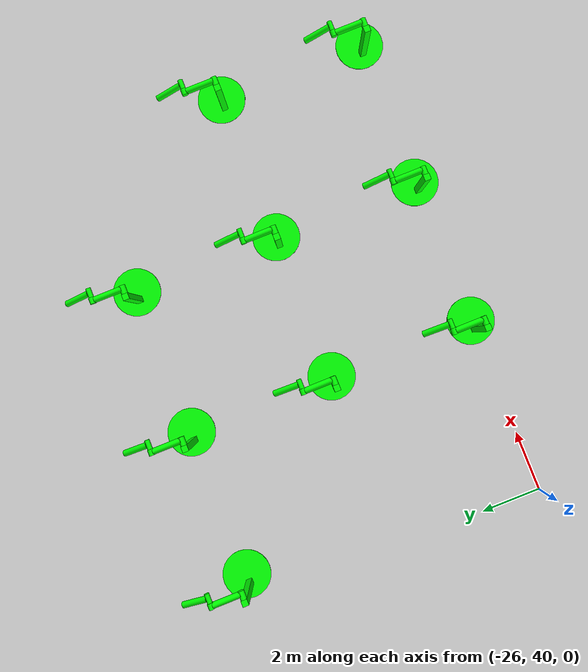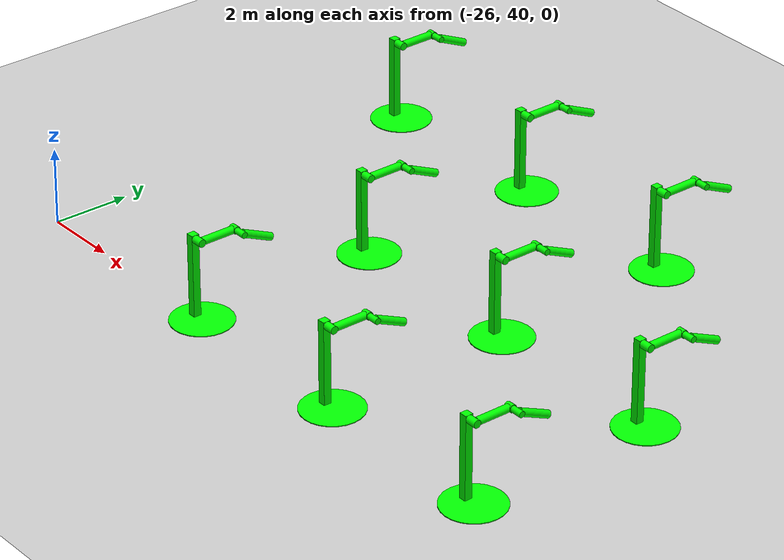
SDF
<sdf version="1.6">
 <world name="double_pendulums">
  <model name="ground_plane">
   <static>true</static>
   <link name="link">
    <collision name="collision">
     <geometry><plane><normal>0 0 1</normal><size>100 100</size></plane></geometry>
    </collision>
    <visual name="visual">
     <geometry><plane><normal>0 0 1</normal><size>100 100</size></plane></geometry>
     <material>
      <ambient>0.8 0.8 0.8 1</ambient>
      <diffuse>0.8 0.8 0.8 1</diffuse>
      <specular>0.8 0.8 0.8 1</specular>
     </material>
    </visual>
   </link>
  </model>
  <model name="dbl_pendulum_206">
   <pose>-20 40 0 0 0 0</pose>
   <link name="base">
    <inertial><mass>100</mass></inertial>
    <visual name="vis_plate_on_ground">
     <pose>0 0 0.01 0 0 0</pose>
     <geometry><cylinder><radius>0.8</radius><length>0.02</length></cylinder></geometry>
     <material><ambient>0 1 0 1</ambient><diffuse>0 1 0 1</diffuse><specular>0 1 0 1</specular></material>
    </visual>
    <visual name="vis_pole">
     <pose>-0.275 0 1.1 0 0 0</pose>
     <geometry><box><size>0.2 0.2 2.2</size></box></geometry>
     <material><ambient>0 1 0 1</ambient><diffuse>0 1 0 1</diffuse><specular>0 1 0 1</specular></material>
    </visual>
    <collision name="col_plate_on_ground">
     <pose>0 0 0.01 0 0 0</pose>
     <geometry><cylinder><radius>0.8</radius><length>0.02</length></cylinder></geometry>
    </collision>
    <collision name="col_pole">
     <pose>-0.275 0 1.1 0 0 0</pose>
     <geometry><box><size>0.2 0.2 2.2</size></box></geometry>
    </collision>
   </link>
   <link name="upper_link">
    <pose>0 0 2.1 -1.5708 0 0</pose>
    <inertial><pose>0 0 0.5 0 0 0</pose></inertial>
    <visual name="vis_upper_joint">
     <pose>-0.05 0 0 0 1.5708 0</pose>
     <geometry><cylinder><radius>0.1</radius><length>0.3</length></cylinder></geometry>
     <material><ambient>0 1 0 1</ambient><diffuse>0 1 0 1</diffuse><specular>0 1 0 1</specular></material>
    </visual>
    <visual name="vis_lower_joint">
     <pose>0 0 1.0 0 1.5708 0</pose>
     <geometry><cylinder><radius>0.1</radius><length>0.2</length></cylinder></geometry>
     <material><ambient>0 1 0 1</ambient><diffuse>0 1 0 1</diffuse><specular>0 1 0 1</specular></material>
    </visual>
    <visual name="vis_cylinder">
     <pose>0 0 0.5 0 0 0</pose>
     <geometry><cylinder><radius>0.1</radius><length>0.9</length></cylinder></geometry>
     <material><ambient>0 1 0 1</ambient><diffuse>0 1 0 1</diffuse><specular>0 1 0 1</specular></material>
    </visual>
    <collision name="col_upper_joint">
     <pose>-0.05 0 0 0 1.5708 0</pose>
     <geometry><cylinder><radius>0.1</radius><length>0.3</length></cylinder></geometry>
    </collision>
    <collision name="col_lower_joint">
     <pose>0 0 1.0 0 1.5708 0</pose>
     <geometry><cylinder><radius>0.1</radius><length>0.2</length></cylinder></geometry>
    </collision>
    <collision name="col_cylinder">
     <pose>0 0 0.5 0 0 0</pose>
     <geometry><cylinder><radius>0.1</radius><length>0.9</length></cylinder></geometry>
    </collision>
   </link>
   <link name="lower_link">
    <pose>0.25 1.0 2.1 -2 0 0</pose>
    <inertial><pose>0 0 0.5 0 0 0</pose></inertial>
    <visual name="vis_lower_joint">
     <pose>0 0 0 0 1.5708 0</pose>
     <geometry><cylinder><radius>0.08</radius><length>0.3</length></cylinder></geometry>
     <material><ambient>0 1 0 1</ambient><diffuse>0 1 0 1</diffuse><specular>0 1 0 1</specular></material>
    </visual>
    <visual name="vis_cylinder">
     <pose>0 0 0.5 0 0 0</pose>
     <geometry><cylinder><radius>0.1</radius><length>0.9</length></cylinder></geometry>
     <material><ambient>0 1 0 1</ambient><diffuse>0 1 0 1</diffuse><specular>0 1 0 1</specular></material>
    </visual>
    <collision name="col_lower_joint">
     <pose>0 0 0 0 1.5708 0</pose>
     <geometry><cylinder><radius>0.08</radius><length>0.3</length></cylinder></geometry>
    </collision>
    <collision name="col_cylinder">
     <pose>0 0 0.5 0 0 0</pose>
     <geometry><cylinder><radius>0.1</radius><length>0.9</length></cylinder></geometry>
    </collision>
   </link>
   <joint name="upper_joint" type="revolute">
    <parent>base</parent>
    <child>upper_link</child>
    <axis><xyz>1.0 0 0</xyz></axis>
   </joint>
   <joint name="lower_joint" type="revolute">
    <parent>upper_link</parent>
    <child>lower_link</child>
    <axis><xyz>1.0 0 0</xyz></axis>
   </joint>
  </model>
  <model name="dbl_pendulum_207">
   <pose>-15 40 0 0 0 0</pose>
   <link name="base">
    <inertial><mass>100</mass></inertial>
    <visual name="vis_plate_on_ground">
     <pose>0 0 0.01 0 0 0</pose>
     <geometry><cylinder><radius>0.8</radius><length>0.02</length></cylinder></geometry>
     <material><ambient>0 1 0 1</ambient><diffuse>0 1 0 1</diffuse><specular>0 1 0 1</specular></material>
    </visual>
    <visual name="vis_pole">
     <pose>-0.275 0 1.1 0 0 0</pose>
     <geometry><box><size>0.2 0.2 2.2</size></box></geometry>
     <material><ambient>0 1 0 1</ambient><diffuse>0 1 0 1</diffuse><specular>0 1 0 1</specular></material>
    </visual>
    <collision name="col_plate_on_ground">
     <pose>0 0 0.01 0 0 0</pose>
     <geometry><cylinder><radius>0.8</radius><length>0.02</length></cylinder></geometry>
    </collision>
    <collision name="col_pole">
     <pose>-0.275 0 1.1 0 0 0</pose>
     <geometry><box><size>0.2 0.2 2.2</size></box></geometry>
    </collision>
   </link>
   <link name="upper_link">
    <pose>0 0 2.1 -1.5708 0 0</pose>
    <inertial><pose>0 0 0.5 0 0 0</pose></inertial>
    <visual name="vis_upper_joint">
     <pose>-0.05 0 0 0 1.5708 0</pose>
     <geometry><cylinder><radius>0.1</radius><length>0.3</length></cylinder></geometry>
     <material><ambient>0 1 0 1</ambient><diffuse>0 1 0 1</diffuse><specular>0 1 0 1</specular></material>
    </visual>
    <visual name="vis_lower_joint">
     <pose>0 0 1.0 0 1.5708 0</pose>
     <geometry><cylinder><radius>0.1</radius><length>0.2</length></cylinder></geometry>
     <material><ambient>0 1 0 1</ambient><diffuse>0 1 0 1</diffuse><specular>0 1 0 1</specular></material>
    </visual>
    <visual name="vis_cylinder">
     <pose>0 0 0.5 0 0 0</pose>
     <geometry><cylinder><radius>0.1</radius><length>0.9</length></cylinder></geometry>
     <material><ambient>0 1 0 1</ambient><diffuse>0 1 0 1</diffuse><specular>0 1 0 1</specular></material>
    </visual>
    <collision name="col_upper_joint">
     <pose>-0.05 0 0 0 1.5708 0</pose>
     <geometry><cylinder><radius>0.1</radius><length>0.3</length></cylinder></geometry>
    </collision>
    <collision name="col_lower_joint">
     <pose>0 0 1.0 0 1.5708 0</pose>
     <geometry><cylinder><radius>0.1</radius><length>0.2</length></cylinder></geometry>
    </collision>
    <collision name="col_cylinder">
     <pose>0 0 0.5 0 0 0</pose>
     <geometry><cylinder><radius>0.1</radius><length>0.9</length></cylinder></geometry>
    </collision>
   </link>
   <link name="lower_link">
    <pose>0.25 1.0 2.1 -2 0 0</pose>
    <inertial><pose>0 0 0.5 0 0 0</pose></inertial>
    <visual name="vis_lower_joint">
     <pose>0 0 0 0 1.5708 0</pose>
     <geometry><cylinder><radius>0.08</radius><length>0.3</length></cylinder></geometry>
     <material><ambient>0 1 0 1</ambient><diffuse>0 1 0 1</diffuse><specular>0 1 0 1</specular></material>
    </visual>
    <visual name="vis_cylinder">
     <pose>0 0 0.5 0 0 0</pose>
     <geometry><cylinder><radius>0.1</radius><length>0.9</length></cylinder></geometry>
     <material><ambient>0 1 0 1</ambient><diffuse>0 1 0 1</diffuse><specular>0 1 0 1</specular></material>
    </visual>
    <collision name="col_lower_joint">
     <pose>0 0 0 0 1.5708 0</pose>
     <geometry><cylinder><radius>0.08</radius><length>0.3</length></cylinder></geometry>
    </collision>
    <collision name="col_cylinder">
     <pose>0 0 0.5 0 0 0</pose>
     <geometry><cylinder><radius>0.1</radius><length>0.9</length></cylinder></geometry>
    </collision>
   </link>
   <joint name="upper_joint" type="revolute">
    <parent>base</parent>
    <child>upper_link</child>
    <axis><xyz>1.0 0 0</xyz></axis>
   </joint>
   <joint name="lower_joint" type="revolute">
    <parent>upper_link</parent>
    <child>lower_link</child>
    <axis><xyz>1.0 0 0</xyz></axis>
   </joint>
  </model>
  <model name="dbl_pendulum_208">
   <pose>-10 40 0 0 0 0</pose>
   <link name="base">
    <inertial><mass>100</mass></inertial>
    <visual name="vis_plate_on_ground">
     <pose>0 0 0.01 0 0 0</pose>
     <geometry><cylinder><radius>0.8</radius><length>0.02</length></cylinder></geometry>
     <material><ambient>0 1 0 1</ambient><diffuse>0 1 0 1</diffuse><specular>0 1 0 1</specular></material>
    </visual>
    <visual name="vis_pole">
     <pose>-0.275 0 1.1 0 0 0</pose>
     <geometry><box><size>0.2 0.2 2.2</size></box></geometry>
     <material><ambient>0 1 0 1</ambient><diffuse>0 1 0 1</diffuse><specular>0 1 0 1</specular></material>
    </visual>
    <collision name="col_plate_on_ground">
     <pose>0 0 0.01 0 0 0</pose>
     <geometry><cylinder><radius>0.8</radius><length>0.02</length></cylinder></geometry>
    </collision>
    <collision name="col_pole">
     <pose>-0.275 0 1.1 0 0 0</pose>
     <geometry><box><size>0.2 0.2 2.2</size></box></geometry>
    </collision>
   </link>
   <link name="upper_link">
    <pose>0 0 2.1 -1.5708 0 0</pose>
    <inertial><pose>0 0 0.5 0 0 0</pose></inertial>
    <visual name="vis_upper_joint">
     <pose>-0.05 0 0 0 1.5708 0</pose>
     <geometry><cylinder><radius>0.1</radius><length>0.3</length></cylinder></geometry>
     <material><ambient>0 1 0 1</ambient><diffuse>0 1 0 1</diffuse><specular>0 1 0 1</specular></material>
    </visual>
    <visual name="vis_lower_joint">
     <pose>0 0 1.0 0 1.5708 0</pose>
     <geometry><cylinder><radius>0.1</radius><length>0.2</length></cylinder></geometry>
     <material><ambient>0 1 0 1</ambient><diffuse>0 1 0 1</diffuse><specular>0 1 0 1</specular></material>
    </visual>
    <visual name="vis_cylinder">
     <pose>0 0 0.5 0 0 0</pose>
     <geometry><cylinder><radius>0.1</radius><length>0.9</length></cylinder></geometry>
     <material><ambient>0 1 0 1</ambient><diffuse>0 1 0 1</diffuse><specular>0 1 0 1</specular></material>
    </visual>
    <collision name="col_upper_joint">
     <pose>-0.05 0 0 0 1.5708 0</pose>
     <geometry><cylinder><radius>0.1</radius><length>0.3</length></cylinder></geometry>
    </collision>
    <collision name="col_lower_joint">
     <pose>0 0 1.0 0 1.5708 0</pose>
     <geometry><cylinder><radius>0.1</radius><length>0.2</length></cylinder></geometry>
    </collision>
    <collision name="col_cylinder">
     <pose>0 0 0.5 0 0 0</pose>
     <geometry><cylinder><radius>0.1</radius><length>0.9</length></cylinder></geometry>
    </collision>
   </link>
   <link name="lower_link">
    <pose>0.25 1.0 2.1 -2 0 0</pose>
    <inertial><pose>0 0 0.5 0 0 0</pose></inertial>
    <visual name="vis_lower_joint">
     <pose>0 0 0 0 1.5708 0</pose>
     <geometry><cylinder><radius>0.08</radius><length>0.3</length></cylinder></geometry>
     <material><ambient>0 1 0 1</ambient><diffuse>0 1 0 1</diffuse><specular>0 1 0 1</specular></material>
    </visual>
    <visual name="vis_cylinder">
     <pose>0 0 0.5 0 0 0</pose>
     <geometry><cylinder><radius>0.1</radius><length>0.9</length></cylinder></geometry>
     <material><ambient>0 1 0 1</ambient><diffuse>0 1 0 1</diffuse><specular>0 1 0 1</specular></material>
    </visual>
    <collision name="col_lower_joint">
     <pose>0 0 0 0 1.5708 0</pose>
     <geometry><cylinder><radius>0.08</radius><length>0.3</length></cylinder></geometry>
    </collision>
    <collision name="col_cylinder">
     <pose>0 0 0.5 0 0 0</pose>
     <geometry><cylinder><radius>0.1</radius><length>0.9</length></cylinder></geometry>
    </collision>
   </link>
   <joint name="upper_joint" type="revolute">
    <parent>base</parent>
    <child>upper_link</child>
    <axis><xyz>1.0 0 0</xyz></axis>
   </joint>
   <joint name="lower_joint" type="revolute">
    <parent>upper_link</parent>
    <child>lower_link</child>
    <axis><xyz>1.0 0 0</xyz></axis>
   </joint>
  </model>
  <model name="dbl_pendulum_231">
   <pose>-20 45 0 0 0 0</pose>
   <link name="base">
    <inertial><mass>100</mass></inertial>
    <visual name="vis_plate_on_ground">
     <pose>0 0 0.01 0 0 0</pose>
     <geometry><cylinder><radius>0.8</radius><length>0.02</length></cylinder></geometry>
     <material><ambient>0 1 0 1</ambient><diffuse>0 1 0 1</diffuse><specular>0 1 0 1</specular></material>
    </visual>
    <visual name="vis_pole">
     <pose>-0.275 0 1.1 0 0 0</pose>
     <geometry><box><size>0.2 0.2 2.2</size></box></geometry>
     <material><ambient>0 1 0 1</ambient><diffuse>0 1 0 1</diffuse><specular>0 1 0 1</specular></material>
    </visual>
    <collision name="col_plate_on_ground">
     <pose>0 0 0.01 0 0 0</pose>
     <geometry><cylinder><radius>0.8</radius><length>0.02</length></cylinder></geometry>
    </collision>
    <collision name="col_pole">
     <pose>-0.275 0 1.1 0 0 0</pose>
     <geometry><box><size>0.2 0.2 2.2</size></box></geometry>
    </collision>
   </link>
   <link name="upper_link">
    <pose>0 0 2.1 -1.5708 0 0</pose>
    <inertial><pose>0 0 0.5 0 0 0</pose></inertial>
    <visual name="vis_upper_joint">
     <pose>-0.05 0 0 0 1.5708 0</pose>
     <geometry><cylinder><radius>0.1</radius><length>0.3</length></cylinder></geometry>
     <material><ambient>0 1 0 1</ambient><diffuse>0 1 0 1</diffuse><specular>0 1 0 1</specular></material>
    </visual>
    <visual name="vis_lower_joint">
     <pose>0 0 1.0 0 1.5708 0</pose>
     <geometry><cylinder><radius>0.1</radius><length>0.2</length></cylinder></geometry>
     <material><ambient>0 1 0 1</ambient><diffuse>0 1 0 1</diffuse><specular>0 1 0 1</specular></material>
    </visual>
    <visual name="vis_cylinder">
     <pose>0 0 0.5 0 0 0</pose>
     <geometry><cylinder><radius>0.1</radius><length>0.9</length></cylinder></geometry>
     <material><ambient>0 1 0 1</ambient><diffuse>0 1 0 1</diffuse><specular>0 1 0 1</specular></material>
    </visual>
    <collision name="col_upper_joint">
     <pose>-0.05 0 0 0 1.5708 0</pose>
     <geometry><cylinder><radius>0.1</radius><length>0.3</length></cylinder></geometry>
    </collision>
    <collision name="col_lower_joint">
     <pose>0 0 1.0 0 1.5708 0</pose>
     <geometry><cylinder><radius>0.1</radius><length>0.2</length></cylinder></geometry>
    </collision>
    <collision name="col_cylinder">
     <pose>0 0 0.5 0 0 0</pose>
     <geometry><cylinder><radius>0.1</radius><length>0.9</length></cylinder></geometry>
    </collision>
   </link>
   <link name="lower_link">
    <pose>0.25 1.0 2.1 -2 0 0</pose>
    <inertial><pose>0 0 0.5 0 0 0</pose></inertial>
    <visual name="vis_lower_joint">
     <pose>0 0 0 0 1.5708 0</pose>
     <geometry><cylinder><radius>0.08</radius><length>0.3</length></cylinder></geometry>
     <material><ambient>0 1 0 1</ambient><diffuse>0 1 0 1</diffuse><specular>0 1 0 1</specular></material>
    </visual>
    <visual name="vis_cylinder">
     <pose>0 0 0.5 0 0 0</pose>
     <geometry><cylinder><radius>0.1</radius><length>0.9</length></cylinder></geometry>
     <material><ambient>0 1 0 1</ambient><diffuse>0 1 0 1</diffuse><specular>0 1 0 1</specular></material>
    </visual>
    <collision name="col_lower_joint">
     <pose>0 0 0 0 1.5708 0</pose>
     <geometry><cylinder><radius>0.08</radius><length>0.3</length></cylinder></geometry>
    </collision>
    <collision name="col_cylinder">
     <pose>0 0 0.5 0 0 0</pose>
     <geometry><cylinder><radius>0.1</radius><length>0.9</length></cylinder></geometry>
    </collision>
   </link>
   <joint name="upper_joint" type="revolute">
    <parent>base</parent>
    <child>upper_link</child>
    <axis><xyz>1.0 0 0</xyz></axis>
   </joint>
   <joint name="lower_joint" type="revolute">
    <parent>upper_link</parent>
    <child>lower_link</child>
    <axis><xyz>1.0 0 0</xyz></axis>
   </joint>
  </model>
  <model name="dbl_pendulum_232">
   <pose>-15 45 0 0 0 0</pose>
   <link name="base">
    <inertial><mass>100</mass></inertial>
    <visual name="vis_plate_on_ground">
     <pose>0 0 0.01 0 0 0</pose>
     <geometry><cylinder><radius>0.8</radius><length>0.02</length></cylinder></geometry>
     <material><ambient>0 1 0 1</ambient><diffuse>0 1 0 1</diffuse><specular>0 1 0 1</specular></material>
    </visual>
    <visual name="vis_pole">
     <pose>-0.275 0 1.1 0 0 0</pose>
     <geometry><box><size>0.2 0.2 2.2</size></box></geometry>
     <material><ambient>0 1 0 1</ambient><diffuse>0 1 0 1</diffuse><specular>0 1 0 1</specular></material>
    </visual>
    <collision name="col_plate_on_ground">
     <pose>0 0 0.01 0 0 0</pose>
     <geometry><cylinder><radius>0.8</radius><length>0.02</length></cylinder></geometry>
    </collision>
    <collision name="col_pole">
     <pose>-0.275 0 1.1 0 0 0</pose>
     <geometry><box><size>0.2 0.2 2.2</size></box></geometry>
    </collision>
   </link>
   <link name="upper_link">
    <pose>0 0 2.1 -1.5708 0 0</pose>
    <inertial><pose>0 0 0.5 0 0 0</pose></inertial>
    <visual name="vis_upper_joint">
     <pose>-0.05 0 0 0 1.5708 0</pose>
     <geometry><cylinder><radius>0.1</radius><length>0.3</length></cylinder></geometry>
     <material><ambient>0 1 0 1</ambient><diffuse>0 1 0 1</diffuse><specular>0 1 0 1</specular></material>
    </visual>
    <visual name="vis_lower_joint">
     <pose>0 0 1.0 0 1.5708 0</pose>
     <geometry><cylinder><radius>0.1</radius><length>0.2</length></cylinder></geometry>
     <material><ambient>0 1 0 1</ambient><diffuse>0 1 0 1</diffuse><specular>0 1 0 1</specular></material>
    </visual>
    <visual name="vis_cylinder">
     <pose>0 0 0.5 0 0 0</pose>
     <geometry><cylinder><radius>0.1</radius><length>0.9</length></cylinder></geometry>
     <material><ambient>0 1 0 1</ambient><diffuse>0 1 0 1</diffuse><specular>0 1 0 1</specular></material>
    </visual>
    <collision name="col_upper_joint">
     <pose>-0.05 0 0 0 1.5708 0</pose>
     <geometry><cylinder><radius>0.1</radius><length>0.3</length></cylinder></geometry>
    </collision>
    <collision name="col_lower_joint">
     <pose>0 0 1.0 0 1.5708 0</pose>
     <geometry><cylinder><radius>0.1</radius><length>0.2</length></cylinder></geometry>
    </collision>
    <collision name="col_cylinder">
     <pose>0 0 0.5 0 0 0</pose>
     <geometry><cylinder><radius>0.1</radius><length>0.9</length></cylinder></geometry>
    </collision>
   </link>
   <link name="lower_link">
    <pose>0.25 1.0 2.1 -2 0 0</pose>
    <inertial><pose>0 0 0.5 0 0 0</pose></inertial>
    <visual name="vis_lower_joint">
     <pose>0 0 0 0 1.5708 0</pose>
     <geometry><cylinder><radius>0.08</radius><length>0.3</length></cylinder></geometry>
     <material><ambient>0 1 0 1</ambient><diffuse>0 1 0 1</diffuse><specular>0 1 0 1</specular></material>
    </visual>
    <visual name="vis_cylinder">
     <pose>0 0 0.5 0 0 0</pose>
     <geometry><cylinder><radius>0.1</radius><length>0.9</length></cylinder></geometry>
     <material><ambient>0 1 0 1</ambient><diffuse>0 1 0 1</diffuse><specular>0 1 0 1</specular></material>
    </visual>
    <collision name="col_lower_joint">
     <pose>0 0 0 0 1.5708 0</pose>
     <geometry><cylinder><radius>0.08</radius><length>0.3</length></cylinder></geometry>
    </collision>
    <collision name="col_cylinder">
     <pose>0 0 0.5 0 0 0</pose>
     <geometry><cylinder><radius>0.1</radius><length>0.9</length></cylinder></geometry>
    </collision>
   </link>
   <joint name="upper_joint" type="revolute">
    <parent>base</parent>
    <child>upper_link</child>
    <axis><xyz>1.0 0 0</xyz></axis>
   </joint>
   <joint name="lower_joint" type="revolute">
    <parent>upper_link</parent>
    <child>lower_link</child>
    <axis><xyz>1.0 0 0</xyz></axis>
   </joint>
  </model>
  <model name="dbl_pendulum_233">
   <pose>-10 45 0 0 0 0</pose>
   <link name="base">
    <inertial><mass>100</mass></inertial>
    <visual name="vis_plate_on_ground">
     <pose>0 0 0.01 0 0 0</pose>
     <geometry><cylinder><radius>0.8</radius><length>0.02</length></cylinder></geometry>
     <material><ambient>0 1 0 1</ambient><diffuse>0 1 0 1</diffuse><specular>0 1 0 1</specular></material>
    </visual>
    <visual name="vis_pole">
     <pose>-0.275 0 1.1 0 0 0</pose>
     <geometry><box><size>0.2 0.2 2.2</size></box></geometry>
     <material><ambient>0 1 0 1</ambient><diffuse>0 1 0 1</diffuse><specular>0 1 0 1</specular></material>
    </visual>
    <collision name="col_plate_on_ground">
     <pose>0 0 0.01 0 0 0</pose>
     <geometry><cylinder><radius>0.8</radius><length>0.02</length></cylinder></geometry>
    </collision>
    <collision name="col_pole">
     <pose>-0.275 0 1.1 0 0 0</pose>
     <geometry><box><size>0.2 0.2 2.2</size></box></geometry>
    </collision>
   </link>
   <link name="upper_link">
    <pose>0 0 2.1 -1.5708 0 0</pose>
    <inertial><pose>0 0 0.5 0 0 0</pose></inertial>
    <visual name="vis_upper_joint">
     <pose>-0.05 0 0 0 1.5708 0</pose>
     <geometry><cylinder><radius>0.1</radius><length>0.3</length></cylinder></geometry>
     <material><ambient>0 1 0 1</ambient><diffuse>0 1 0 1</diffuse><specular>0 1 0 1</specular></material>
    </visual>
    <visual name="vis_lower_joint">
     <pose>0 0 1.0 0 1.5708 0</pose>
     <geometry><cylinder><radius>0.1</radius><length>0.2</length></cylinder></geometry>
     <material><ambient>0 1 0 1</ambient><diffuse>0 1 0 1</diffuse><specular>0 1 0 1</specular></material>
    </visual>
    <visual name="vis_cylinder">
     <pose>0 0 0.5 0 0 0</pose>
     <geometry><cylinder><radius>0.1</radius><length>0.9</length></cylinder></geometry>
     <material><ambient>0 1 0 1</ambient><diffuse>0 1 0 1</diffuse><specular>0 1 0 1</specular></material>
    </visual>
    <collision name="col_upper_joint">
     <pose>-0.05 0 0 0 1.5708 0</pose>
     <geometry><cylinder><radius>0.1</radius><length>0.3</length></cylinder></geometry>
    </collision>
    <collision name="col_lower_joint">
     <pose>0 0 1.0 0 1.5708 0</pose>
     <geometry><cylinder><radius>0.1</radius><length>0.2</length></cylinder></geometry>
    </collision>
    <collision name="col_cylinder">
     <pose>0 0 0.5 0 0 0</pose>
     <geometry><cylinder><radius>0.1</radius><length>0.9</length></cylinder></geometry>
    </collision>
   </link>
   <link name="lower_link">
    <pose>0.25 1.0 2.1 -2 0 0</pose>
    <inertial><pose>0 0 0.5 0 0 0</pose></inertial>
    <visual name="vis_lower_joint">
     <pose>0 0 0 0 1.5708 0</pose>
     <geometry><cylinder><radius>0.08</radius><length>0.3</length></cylinder></geometry>
     <material><ambient>0 1 0 1</ambient><diffuse>0 1 0 1</diffuse><specular>0 1 0 1</specular></material>
    </visual>
    <visual name="vis_cylinder">
     <pose>0 0 0.5 0 0 0</pose>
     <geometry><cylinder><radius>0.1</radius><length>0.9</length></cylinder></geometry>
     <material><ambient>0 1 0 1</ambient><diffuse>0 1 0 1</diffuse><specular>0 1 0 1</specular></material>
    </visual>
    <collision name="col_lower_joint">
     <pose>0 0 0 0 1.5708 0</pose>
     <geometry><cylinder><radius>0.08</radius><length>0.3</length></cylinder></geometry>
    </collision>
    <collision name="col_cylinder">
     <pose>0 0 0.5 0 0 0</pose>
     <geometry><cylinder><radius>0.1</radius><length>0.9</length></cylinder></geometry>
    </collision>
   </link>
   <joint name="upper_joint" type="revolute">
    <parent>base</parent>
    <child>upper_link</child>
    <axis><xyz>1.0 0 0</xyz></axis>
   </joint>
   <joint name="lower_joint" type="revolute">
    <parent>upper_link</parent>
    <child>lower_link</child>
    <axis><xyz>1.0 0 0</xyz></axis>
   </joint>
  </model>
  <model name="dbl_pendulum_255">
   <pose>-25 50 0 0 0 0</pose>
   <link name="base">
    <inertial><mass>100</mass></inertial>
    <visual name="vis_plate_on_ground">
     <pose>0 0 0.01 0 0 0</pose>
     <geometry><cylinder><radius>0.8</radius><length>0.02</length></cylinder></geometry>
     <material><ambient>0 1 0 1</ambient><diffuse>0 1 0 1</diffuse><specular>0 1 0 1</specular></material>
    </visual>
    <visual name="vis_pole">
     <pose>-0.275 0 1.1 0 0 0</pose>
     <geometry><box><size>0.2 0.2 2.2</size></box></geometry>
     <material><ambient>0 1 0 1</ambient><diffuse>0 1 0 1</diffuse><specular>0 1 0 1</specular></material>
    </visual>
    <collision name="col_plate_on_ground">
     <pose>0 0 0.01 0 0 0</pose>
     <geometry><cylinder><radius>0.8</radius><length>0.02</length></cylinder></geometry>
    </collision>
    <collision name="col_pole">
     <pose>-0.275 0 1.1 0 0 0</pose>
     <geometry><box><size>0.2 0.2 2.2</size></box></geometry>
    </collision>
   </link>
   <link name="upper_link">
    <pose>0 0 2.1 -1.5708 0 0</pose>
    <inertial><pose>0 0 0.5 0 0 0</pose></inertial>
    <visual name="vis_upper_joint">
     <pose>-0.05 0 0 0 1.5708 0</pose>
     <geometry><cylinder><radius>0.1</radius><length>0.3</length></cylinder></geometry>
     <material><ambient>0 1 0 1</ambient><diffuse>0 1 0 1</diffuse><specular>0 1 0 1</specular></material>
    </visual>
    <visual name="vis_lower_joint">
     <pose>0 0 1.0 0 1.5708 0</pose>
     <geometry><cylinder><radius>0.1</radius><length>0.2</length></cylinder></geometry>
     <material><ambient>0 1 0 1</ambient><diffuse>0 1 0 1</diffuse><specular>0 1 0 1</specular></material>
    </visual>
    <visual name="vis_cylinder">
     <pose>0 0 0.5 0 0 0</pose>
     <geometry><cylinder><radius>0.1</radius><length>0.9</length></cylinder></geometry>
     <material><ambient>0 1 0 1</ambient><diffuse>0 1 0 1</diffuse><specular>0 1 0 1</specular></material>
    </visual>
    <collision name="col_upper_joint">
     <pose>-0.05 0 0 0 1.5708 0</pose>
     <geometry><cylinder><radius>0.1</radius><length>0.3</length></cylinder></geometry>
    </collision>
    <collision name="col_lower_joint">
     <pose>0 0 1.0 0 1.5708 0</pose>
     <geometry><cylinder><radius>0.1</radius><length>0.2</length></cylinder></geometry>
    </collision>
    <collision name="col_cylinder">
     <pose>0 0 0.5 0 0 0</pose>
     <geometry><cylinder><radius>0.1</radius><length>0.9</length></cylinder></geometry>
    </collision>
   </link>
   <link name="lower_link">
    <pose>0.25 1.0 2.1 -2 0 0</pose>
    <inertial><pose>0 0 0.5 0 0 0</pose></inertial>
    <visual name="vis_lower_joint">
     <pose>0 0 0 0 1.5708 0</pose>
     <geometry><cylinder><radius>0.08</radius><length>0.3</length></cylinder></geometry>
     <material><ambient>0 1 0 1</ambient><diffuse>0 1 0 1</diffuse><specular>0 1 0 1</specular></material>
    </visual>
    <visual name="vis_cylinder">
     <pose>0 0 0.5 0 0 0</pose>
     <geometry><cylinder><radius>0.1</radius><length>0.9</length></cylinder></geometry>
     <material><ambient>0 1 0 1</ambient><diffuse>0 1 0 1</diffuse><specular>0 1 0 1</specular></material>
    </visual>
    <collision name="col_lower_joint">
     <pose>0 0 0 0 1.5708 0</pose>
     <geometry><cylinder><radius>0.08</radius><length>0.3</length></cylinder></geometry>
    </collision>
    <collision name="col_cylinder">
     <pose>0 0 0.5 0 0 0</pose>
     <geometry><cylinder><radius>0.1</radius><length>0.9</length></cylinder></geometry>
    </collision>
   </link>
   <joint name="upper_joint" type="revolute">
    <parent>base</parent>
    <child>upper_link</child>
    <axis><xyz>1.0 0 0</xyz></axis>
   </joint>
   <joint name="lower_joint" type="revolute">
    <parent>upper_link</parent>
    <child>lower_link</child>
    <axis><xyz>1.0 0 0</xyz></axis>
   </joint>
  </model>
  <model name="dbl_pendulum_256">
   <pose>-20 50 0 0 0 0</pose>
   <link name="base">
    <inertial><mass>100</mass></inertial>
    <visual name="vis_plate_on_ground">
     <pose>0 0 0.01 0 0 0</pose>
     <geometry><cylinder><radius>0.8</radius><length>0.02</length></cylinder></geometry>
     <material><ambient>0 1 0 1</ambient><diffuse>0 1 0 1</diffuse><specular>0 1 0 1</specular></material>
    </visual>
    <visual name="vis_pole">
     <pose>-0.275 0 1.1 0 0 0</pose>
     <geometry><box><size>0.2 0.2 2.2</size></box></geometry>
     <material><ambient>0 1 0 1</ambient><diffuse>0 1 0 1</diffuse><specular>0 1 0 1</specular></material>
    </visual>
    <collision name="col_plate_on_ground">
     <pose>0 0 0.01 0 0 0</pose>
     <geometry><cylinder><radius>0.8</radius><length>0.02</length></cylinder></geometry>
    </collision>
    <collision name="col_pole">
     <pose>-0.275 0 1.1 0 0 0</pose>
     <geometry><box><size>0.2 0.2 2.2</size></box></geometry>
    </collision>
   </link>
   <link name="upper_link">
    <pose>0 0 2.1 -1.5708 0 0</pose>
    <inertial><pose>0 0 0.5 0 0 0</pose></inertial>
    <visual name="vis_upper_joint">
     <pose>-0.05 0 0 0 1.5708 0</pose>
     <geometry><cylinder><radius>0.1</radius><length>0.3</length></cylinder></geometry>
     <material><ambient>0 1 0 1</ambient><diffuse>0 1 0 1</diffuse><specular>0 1 0 1</specular></material>
    </visual>
    <visual name="vis_lower_joint">
     <pose>0 0 1.0 0 1.5708 0</pose>
     <geometry><cylinder><radius>0.1</radius><length>0.2</length></cylinder></geometry>
     <material><ambient>0 1 0 1</ambient><diffuse>0 1 0 1</diffuse><specular>0 1 0 1</specular></material>
    </visual>
    <visual name="vis_cylinder">
     <pose>0 0 0.5 0 0 0</pose>
     <geometry><cylinder><radius>0.1</radius><length>0.9</length></cylinder></geometry>
     <material><ambient>0 1 0 1</ambient><diffuse>0 1 0 1</diffuse><specular>0 1 0 1</specular></material>
    </visual>
    <collision name="col_upper_joint">
     <pose>-0.05 0 0 0 1.5708 0</pose>
     <geometry><cylinder><radius>0.1</radius><length>0.3</length></cylinder></geometry>
    </collision>
    <collision name="col_lower_joint">
     <pose>0 0 1.0 0 1.5708 0</pose>
     <geometry><cylinder><radius>0.1</radius><length>0.2</length></cylinder></geometry>
    </collision>
    <collision name="col_cylinder">
     <pose>0 0 0.5 0 0 0</pose>
     <geometry><cylinder><radius>0.1</radius><length>0.9</length></cylinder></geometry>
    </collision>
   </link>
   <link name="lower_link">
    <pose>0.25 1.0 2.1 -2 0 0</pose>
    <inertial><pose>0 0 0.5 0 0 0</pose></inertial>
    <visual name="vis_lower_joint">
     <pose>0 0 0 0 1.5708 0</pose>
     <geometry><cylinder><radius>0.08</radius><length>0.3</length></cylinder></geometry>
     <material><ambient>0 1 0 1</ambient><diffuse>0 1 0 1</diffuse><specular>0 1 0 1</specular></material>
    </visual>
    <visual name="vis_cylinder">
     <pose>0 0 0.5 0 0 0</pose>
     <geometry><cylinder><radius>0.1</radius><length>0.9</length></cylinder></geometry>
     <material><ambient>0 1 0 1</ambient><diffuse>0 1 0 1</diffuse><specular>0 1 0 1</specular></material>
    </visual>
    <collision name="col_lower_joint">
     <pose>0 0 0 0 1.5708 0</pose>
     <geometry><cylinder><radius>0.08</radius><length>0.3</length></cylinder></geometry>
    </collision>
    <collision name="col_cylinder">
     <pose>0 0 0.5 0 0 0</pose>
     <geometry><cylinder><radius>0.1</radius><length>0.9</length></cylinder></geometry>
    </collision>
   </link>
   <joint name="upper_joint" type="revolute">
    <parent>base</parent>
    <child>upper_link</child>
    <axis><xyz>1.0 0 0</xyz></axis>
   </joint>
   <joint name="lower_joint" type="revolute">
    <parent>upper_link</parent>
    <child>lower_link</child>
    <axis><xyz>1.0 0 0</xyz></axis>
   </joint>
  </model>
  <model name="dbl_pendulum_257">
   <pose>-15 50 0 0 0 0</pose>
   <link name="base">
    <inertial><mass>100</mass></inertial>
    <visual name="vis_plate_on_ground">
     <pose>0 0 0.01 0 0 0</pose>
     <geometry><cylinder><radius>0.8</radius><length>0.02</length></cylinder></geometry>
     <material><ambient>0 1 0 1</ambient><diffuse>0 1 0 1</diffuse><specular>0 1 0 1</specular></material>
    </visual>
    <visual name="vis_pole">
     <pose>-0.275 0 1.1 0 0 0</pose>
     <geometry><box><size>0.2 0.2 2.2</size></box></geometry>
     <material><ambient>0 1 0 1</ambient><diffuse>0 1 0 1</diffuse><specular>0 1 0 1</specular></material>
    </visual>
    <collision name="col_plate_on_ground">
     <pose>0 0 0.01 0 0 0</pose>
     <geometry><cylinder><radius>0.8</radius><length>0.02</length></cylinder></geometry>
    </collision>
    <collision name="col_pole">
     <pose>-0.275 0 1.1 0 0 0</pose>
     <geometry><box><size>0.2 0.2 2.2</size></box></geometry>
    </collision>
   </link>
   <link name="upper_link">
    <pose>0 0 2.1 -1.5708 0 0</pose>
    <inertial><pose>0 0 0.5 0 0 0</pose></inertial>
    <visual name="vis_upper_joint">
     <pose>-0.05 0 0 0 1.5708 0</pose>
     <geometry><cylinder><radius>0.1</radius><length>0.3</length></cylinder></geometry>
     <material><ambient>0 1 0 1</ambient><diffuse>0 1 0 1</diffuse><specular>0 1 0 1</specular></material>
    </visual>
    <visual name="vis_lower_joint">
     <pose>0 0 1.0 0 1.5708 0</pose>
     <geometry><cylinder><radius>0.1</radius><length>0.2</length></cylinder></geometry>
     <material><ambient>0 1 0 1</ambient><diffuse>0 1 0 1</diffuse><specular>0 1 0 1</specular></material>
    </visual>
    <visual name="vis_cylinder">
     <pose>0 0 0.5 0 0 0</pose>
     <geometry><cylinder><radius>0.1</radius><length>0.9</length></cylinder></geometry>
     <material><ambient>0 1 0 1</ambient><diffuse>0 1 0 1</diffuse><specular>0 1 0 1</specular></material>
    </visual>
    <collision name="col_upper_joint">
     <pose>-0.05 0 0 0 1.5708 0</pose>
     <geometry><cylinder><radius>0.1</radius><length>0.3</length></cylinder></geometry>
    </collision>
    <collision name="col_lower_joint">
     <pose>0 0 1.0 0 1.5708 0</pose>
     <geometry><cylinder><radius>0.1</radius><length>0.2</length></cylinder></geometry>
    </collision>
    <collision name="col_cylinder">
     <pose>0 0 0.5 0 0 0</pose>
     <geometry><cylinder><radius>0.1</radius><length>0.9</length></cylinder></geometry>
    </collision>
   </link>
   <link name="lower_link">
    <pose>0.25 1.0 2.1 -2 0 0</pose>
    <inertial><pose>0 0 0.5 0 0 0</pose></inertial>
    <visual name="vis_lower_joint">
     <pose>0 0 0 0 1.5708 0</pose>
     <geometry><cylinder><radius>0.08</radius><length>0.3</length></cylinder></geometry>
     <material><ambient>0 1 0 1</ambient><diffuse>0 1 0 1</diffuse><specular>0 1 0 1</specular></material>
    </visual>
    <visual name="vis_cylinder">
     <pose>0 0 0.5 0 0 0</pose>
     <geometry><cylinder><radius>0.1</radius><length>0.9</length></cylinder></geometry>
     <material><ambient>0 1 0 1</ambient><diffuse>0 1 0 1</diffuse><specular>0 1 0 1</specular></material>
    </visual>
    <collision name="col_lower_joint">
     <pose>0 0 0 0 1.5708 0</pose>
     <geometry><cylinder><radius>0.08</radius><length>0.3</length></cylinder></geometry>
    </collision>
    <collision name="col_cylinder">
     <pose>0 0 0.5 0 0 0</pose>
     <geometry><cylinder><radius>0.1</radius><length>0.9</length></cylinder></geometry>
    </collision>
   </link>
   <joint name="upper_joint" type="revolute">
    <parent>base</parent>
    <child>upper_link</child>
    <axis><xyz>1.0 0 0</xyz></axis>
   </joint>
   <joint name="lower_joint" type="revolute">
    <parent>upper_link</parent>
    <child>lower_link</child>
    <axis><xyz>1.0 0 0</xyz></axis>
   </joint>
  </model>
 </world>
</sdf>
